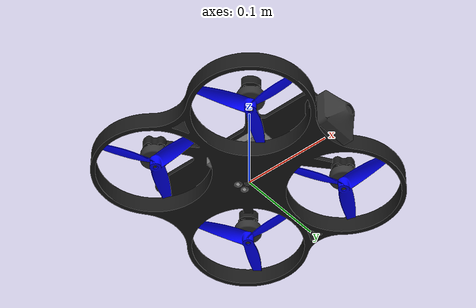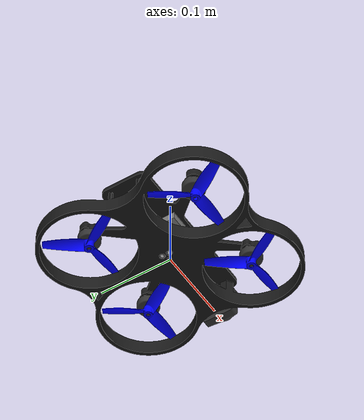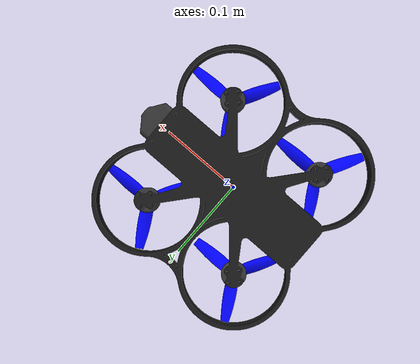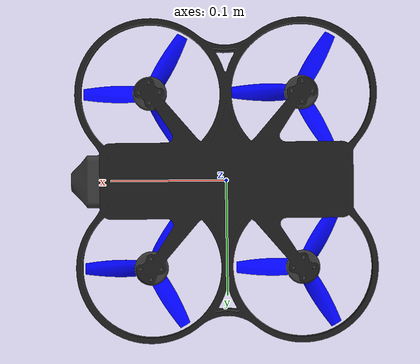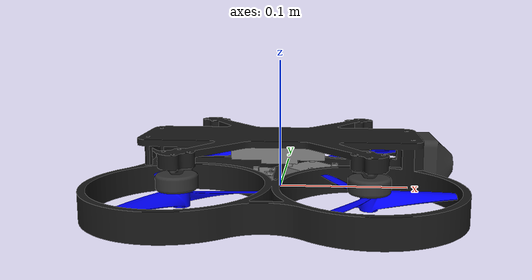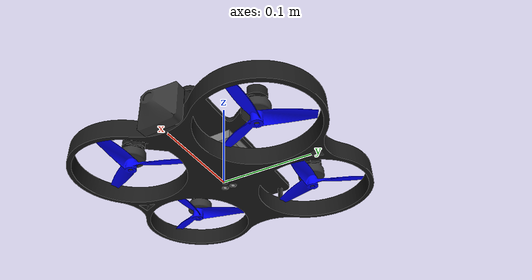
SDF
<?xml version='1.0' encoding='utf-8'?>
<sdf version="1.7">
    <model name="CINEWHOOP_4.5">
        <link name="frame_4_5">
            <pose>0.0 0.0 0.0 0.0 -0.0 0.0</pose>
            <inertial>
                <mass>0.46559043380318527</mass>
                <pose>0.0030291193216684465 4.153273349654646e-06 0.018332329913369583 0.0 0.0 0.0</pose>
                <inertia>
                    <ixx>0.0021744778498765994</ixx>
                    <iyy>0.002488853720756953</iyy>
                    <izz>0.004457899881763257</izz>
                    <ixy>-1.832858723255757e-07</ixy>
                    <iyz>-1.822494627435283e-08</iyz>
                    <ixz>-1.4123664265542227e-05</ixz>
                </inertia>
            </inertial>
            <visual name="frame_4_5_visual">
                <geometry>
                    <mesh>
                        <uri>model://cinewhoop/meshes/frame_4.5.stl</uri>
                        <scale>0.001 0.001 0.001</scale>
                    </mesh>
                </geometry>
                <material>
                    <ambient>0.1 0.1 0.1 1.0</ambient>
                    <diffuse>0.1 0.1 0.1 1.0</diffuse>
                    <specular>0.01 0.01 0.01 1.0</specular>
                    <emissive>0 0 0 0</emissive>
                </material>
            </visual>
            <collision name="frame_4_5_collision">
                <geometry>
                    <mesh>
                        <uri>model://cinewhoop/meshes/frame_4.5.stl</uri>
                        <scale>0.001 0.001 0.001</scale>
                    </mesh>
                </geometry>
            </collision>
        </link>
        <link name="siyi_ip_camera">
            <pose>0.10816599938804068 -1.7275070263167436e-15 0.020500000000000008 9.244463733058728e-32 -4.417951470996925e-18 1.5707963267948968</pose>
            <inertial>
                <mass>0.034531703811389286</mass>
                <pose>-1.271742261216883e-15 -0.009130708665020693 -1.462820061108202e-18 0.0 0.0 0.0</pose>
                <inertia>
                    <ixx>5.620390098305882e-06</ixx>
                    <iyy>9.24352863067799e-06</iyy>
                    <izz>6.027604506851181e-06</izz>
                    <ixy>-6.838812146243414e-19</ixy>
                    <iyz>1.4808982354579313e-21</iyz>
                    <ixz>-1.027054303156257e-11</ixz>
                </inertia>
            </inertial>
            <visual name="siyi_ip_camera_visual">
                <geometry>
                    <mesh>
                        <uri>model://cinewhoop/meshes/siyi_ip_camera.stl</uri>
                        <scale>0.001 0.001 0.001</scale>
                    </mesh>
                </geometry>
                <material>
                    <ambient>0.2 0.2 0.2 1.0</ambient>
                    <diffuse>0.2 0.2 0.2 1.0</diffuse>
                    <specular>0.02 0.02 0.02 1.0</specular>
                    <emissive>0 0 0 0</emissive>
                </material>
            </visual>
            <collision name="siyi_ip_camera_collision">
                <geometry>
                    <mesh>
                        <uri>model://cinewhoop/meshes/siyi_ip_camera.stl</uri>
                        <scale>0.001 0.001 0.001</scale>
                    </mesh>
                </geometry>
            </collision>
            <sensor name="siyi_rgbd_cam" type="rgbd_camera">
                <pose degrees="true">0 0 0 0 0 -90</pose>
                <update_rate>30</update_rate>
                <!-- Stream RGB -->
                <camera name="rgb">
                    <horizontal_fov>1.047</horizontal_fov>
                    <image>
                    <width>640</width>
                    <height>480</height>
                    <format>R8G8B8</format>
                    </image>
                    <clip>
                    <near>0.1</near>
                    <far>10.0</far>
                    </clip>
                </camera>
                <!-- Stream Profundidad -->
                <depth_camera name="depth">
                    <horizontal_fov>1.047</horizontal_fov>
                    <range>
                    <min>0.1</min>
                    <max>10.0</max>
                    <resolution>0.01</resolution>
                    </range>
                </depth_camera>
                <always_on>1</always_on>
                <visualize>true</visualize>
                <topic>drone_camera</topic>
            </sensor>

        </link>
        <link name="motor_fr">
            <pose>0.274930173354724 -0.03694440364659316 0.029499999999999967 3.141592653589793 2.6367796834847463e-16 0.0</pose>
            <inertial>
                <mass>0.02166445211752593</mass>
                <pose>-0.20985117029189773 0.038055588330862845 0.007696163669726234 0.0 0.0 0.0</pose>
                <inertia>
                    <ixx>1.421637783939523e-06</ixx>
                    <iyy>1.4216377839314737e-06</iyy>
                    <izz>2.0339490705062644e-06</izz>
                    <ixy>1.2737599899829212e-18</ixy>
                    <iyz>-2.303980641541076e-19</iyz>
                    <ixz>-1.27367722463913e-18</ixz>
                </inertia>
            </inertial>
            <visual name="motor_fr_visual">
                <geometry>
                    <mesh>
                        <uri>model://cinewhoop/meshes/motor_fr.stl</uri>
                        <scale>0.001 0.001 0.001</scale>
                    </mesh>
                </geometry>
                <material>
                    <ambient>0.2 0.2 0.2 1.0</ambient>
                    <diffuse>0.2 0.2 0.2 1.0</diffuse>
                    <specular>0.02 0.02 0.02 1.0</specular>
                    <emissive>0 0 0 0</emissive>
                </material>
            </visual>
            <collision name="motor_fr_collision">
                <geometry>
                    <mesh>
                        <uri>model://cinewhoop/meshes/motor_fr.stl</uri>
                        <scale>0.001 0.001 0.001</scale>
                    </mesh>
                </geometry>
            </collision>
        </link>
        <link name="motor_fl">
            <pose>0.27493017335473496 0.11305558079046382 0.029500000000000047 -3.141592653589793 -1.3877787807814454e-16 0.0</pose>
            <inertial>
                <mass>0.02166445211752592</mass>
                <pose>-0.20985117007347823 0.03805558834997017 0.007696163669726252 0.0 0.0 0.0</pose>
                <inertia>
                    <ixx>1.4216377839396332e-06</ixx>
                    <iyy>1.4216377839309595e-06</iyy>
                    <izz>2.0339490705053437e-06</izz>
                    <ixy>1.5044488894486688e-18</ixy>
                    <iyz>-2.3039127803815886e-19</iyz>
                    <ixz>-1.3350179333965965e-18</ixz>
                </inertia>
            </inertial>
            <visual name="motor_fl_visual">
                <geometry>
                    <mesh>
                        <uri>model://cinewhoop/meshes/motor_fl.stl</uri>
                        <scale>0.001 0.001 0.001</scale>
                    </mesh>
                </geometry>
                <material>
                    <ambient>0.2 0.2 0.2 1.0</ambient>
                    <diffuse>0.2 0.2 0.2 1.0</diffuse>
                    <specular>0.02 0.02 0.02 1.0</specular>
                    <emissive>0 0 0 0</emissive>
                </material>
            </visual>
            <collision name="motor_fl_collision">
                <geometry>
                    <mesh>
                        <uri>model://cinewhoop/meshes/motor_fl.stl</uri>
                        <scale>0.001 0.001 0.001</scale>
                    </mesh>
                </geometry>
            </collision>
        </link>
        <link name="motor_rr">
            <pose>0.14477216604671359 -0.03694440364658221 0.029499999999999995 3.141592653589793 9.714451465470125e-17 -2.4651903288156635e-32</pose>
            <inertial>
                <mass>0.02166445211752593</mass>
                <pose>-0.20985117033059833 0.038055588773191124 0.007696163669726242 0.0 0.0 0.0</pose>
                <inertia>
                    <ixx>1.4216377839395497e-06</ixx>
                    <iyy>1.4216377839304289e-06</iyy>
                    <izz>2.033949070506183e-06</izz>
                    <ixy>1.1787541955779033e-18</ixy>
                    <iyz>-2.439699854182217e-19</iyz>
                    <ixz>-1.300925598784377e-18</ixz>
                </inertia>
            </inertial>
            <visual name="motor_rr_visual">
                <geometry>
                    <mesh>
                        <uri>model://cinewhoop/meshes/motor_rr.stl</uri>
                        <scale>0.001 0.001 0.001</scale>
                    </mesh>
                </geometry>
                <material>
                    <ambient>0.2 0.2 0.2 1.0</ambient>
                    <diffuse>0.2 0.2 0.2 1.0</diffuse>
                    <specular>0.02 0.02 0.02 1.0</specular>
                    <emissive>0 0 0 0</emissive>
                </material>
            </visual>
            <collision name="motor_rr_collision">
                <geometry>
                    <mesh>
                        <uri>model://cinewhoop/meshes/motor_rr.stl</uri>
                        <scale>0.001 0.001 0.001</scale>
                    </mesh>
                </geometry>
            </collision>
        </link>
        <link name="motor_rl">
            <pose>0.14477216604672452 0.11305558079047473 0.02950000000000002 3.141592653589793 -0.0 0.0</pose>
            <inertial>
                <mass>0.02166445211752593</mass>
                <pose>-0.20985117011217871 0.03805558879229849 0.0076961636697262525 0.0 0.0 0.0</pose>
                <inertia>
                    <ixx>1.4216377839396056e-06</ixx>
                    <iyy>1.42163778393142e-06</iyy>
                    <izz>2.033949070506401e-06</izz>
                    <ixy>1.3823577699190182e-18</ixy>
                    <iyz>-2.371692252312041e-19</iyz>
                    <ixz>-1.3417001884508117e-18</ixz>
                </inertia>
            </inertial>
            <visual name="motor_rl_visual">
                <geometry>
                    <mesh>
                        <uri>model://cinewhoop/meshes/motor_rl.stl</uri>
                        <scale>0.001 0.001 0.001</scale>
                    </mesh>
                </geometry>
                <material>
                    <ambient>0.2 0.2 0.2 1.0</ambient>
                    <diffuse>0.2 0.2 0.2 1.0</diffuse>
                    <specular>0.02 0.02 0.02 1.0</specular>
                    <emissive>0 0 0 0</emissive>
                </material>
            </visual>
            <collision name="motor_rl_collision">
                <geometry>
                    <mesh>
                        <uri>model://cinewhoop/meshes/motor_rl.stl</uri>
                        <scale>0.001 0.001 0.001</scale>
                    </mesh>
                </geometry>
            </collision>
        </link>
        <link name="prop_ccw_1">
            <pose>0.06507900306282184 -0.07499999197745517 -0.007500000000000071 -4.8570128095075863e-17 -7.21644966006352e-16 -9.720794061142923e-48</pose>
            <inertial>
                <mass>0.003055288032744085</mass>
                <pose>1.0107556796525069e-07 -9.520076465027065e-08 0.019866036312918018 0.0 0.0 0.0</pose>
                <inertia>
                    <ixx>9.386423608052252e-07</ixx>
                    <iyy>9.386625365933881e-07</iyy>
                    <izz>1.8144437132977541e-06</izz>
                    <ixy>-2.468761636897001e-12</ixy>
                    <iyz>7.361053688216663e-13</iyz>
                    <ixz>-1.0264157098639926e-12</ixz>
                </inertia>
            </inertial>
            <visual name="prop_ccw_1_visual">
                <geometry>
                    <mesh>
                        <uri>model://cinewhoop/meshes/prop_ccw_1.stl</uri>
                        <scale>0.001 0.001 0.001</scale>
                    </mesh>
                </geometry>
                <material>
                    <ambient>0 0 1</ambient>
                    <diffuse>0 0 1</diffuse>
                    <specular>0.1 0.1 0.1 1</specular>
                </material>
            </visual>
            <collision name="prop_ccw_1_collision">
                <pose>0 0 0 0 0 0</pose>
                <geometry>
                    <cylinder>
                        <length>0.005</length>
                        <radius>0.1</radius>
                    </cylinder>
                </geometry>
                <surface>
                    <contact>
                        <ode/>
                    </contact>
                    <friction>
                        <ode/>
                    </friction>
                </surface>
            </collision>
        </link>
        <link name="prop_ccw_2">
            <pose>-0.06507900406545856 0.07499999199817704 -0.007499999999999947 -1.2352531617612977e-16 -7.415942859800849e-16 0.0</pose>
            <inertial>
                <mass>0.003055288032744085</mass>
                <pose>1.010755679745287e-07 -9.520076465175954e-08 0.019866036312917976 0.0 0.0 0.0</pose>
                <inertia>
                    <ixx>9.386423608052273e-07</ixx>
                    <iyy>9.386625365933761e-07</iyy>
                    <izz>1.8144437132977473e-06</izz>
                    <ixy>-2.468761635140239e-12</ixy>
                    <iyz>7.361053691091785e-13</iyz>
                    <ixz>-1.0264157081049597e-12</ixz>
                </inertia>
            </inertial>
            <visual name="prop_ccw_2_visual">
                <geometry>
                    <mesh>
                        <uri>model://cinewhoop/meshes/prop_ccw_2.stl</uri>
                        <scale>0.001 0.001 0.001</scale>
                    </mesh>
                </geometry>
                <material>
                    <ambient>0 0 1</ambient>
                    <diffuse>0 0 1</diffuse>
                    <specular>0.1 0.1 0.1 1</specular>
                </material>
            </visual>
            <collision name="prop_ccw_2_collision">
                <pose>0 0 0 0 0 0</pose>
                <geometry>
                    <cylinder>
                        <length>0.005</length>
                        <radius>0.1</radius>
                    </cylinder>
                </geometry>
                <surface>
                    <contact>
                        <ode/>
                    </contact>
                    <friction>
                        <ode/>
                    </friction>
                </surface>
            </collision>
        </link>
        <link name="prop_cw_1">
            <pose>0.06507900328125238 0.07499999244049448 -0.007499999999999876 -9.799311739310995e-16 1.7347234759768157e-17 2.7061742689683618e-49</pose>
            <inertial>
                <mass>0.0030552880224177003</mass>
                <pose>1.0107556833248662e-07 9.520076491405558e-08 0.019866036320335193 0.0 0.0 0.0</pose>
                <inertia>
                    <ixx>9.386423600392953e-07</ixx>
                    <iyy>9.386625350965473e-07</iyy>
                    <izz>1.8144437124096816e-06</izz>
                    <ixy>2.4687616373529236e-12</ixy>
                    <iyz>-7.361053705718206e-13</iyz>
                    <ixz>-1.026415705253706e-12</ixz>
                </inertia>
            </inertial>
            <visual name="prop_cw_1_visual">
                <geometry>
                    <mesh>
                        <uri>model://cinewhoop/meshes/prop_cw_1.stl</uri>
                        <scale>0.001 0.001 0.001</scale>
                    </mesh>
                </geometry>
                <material>
                    <ambient>0 0 1</ambient>
                    <diffuse>0 0 1</diffuse>
                    <specular>0.1 0.1 0.1 1</specular>
                </material>
            </visual>
            <collision name="prop_cw_1_collision">
                <pose>0 0 0 0 0 0</pose>
                <geometry>
                    <cylinder>
                        <length>0.005</length>
                        <radius>0.1</radius>
                    </cylinder>
                </geometry>
                <surface>
                    <contact>
                        <ode/>
                    </contact>
                    <friction>
                        <ode/>
                    </friction>
                </surface>
            </collision>
        </link>
        <link name="prop_cw_2">
            <pose>-0.062124581024852576 -0.0755209369527733 -0.0075 -1.2246467991473532e-16 1.4248351561832541e-80 -2.4651903288156646e-32</pose>
            <inertial>
                <mass>0.0030552880224177003</mass>
                <pose>1.0107556833283127e-07 9.520076493109003e-08 0.019866036320335283 0.0 0.0 0.0</pose>
                <inertia>
                    <ixx>9.386423600392957e-07</ixx>
                    <iyy>9.386625350965416e-07</iyy>
                    <izz>1.8144437124096998e-06</izz>
                    <ixy>2.4687616334502548e-12</ixy>
                    <iyz>-7.361053668994625e-13</iyz>
                    <ixz>-1.0264157056812224e-12</ixz>
                </inertia>
            </inertial>
            <visual name="prop_cw_2_visual">
                <geometry>
                    <mesh>
                        <uri>model://cinewhoop/meshes/prop_cw_2.stl</uri>
                        <scale>0.001 0.001 0.001</scale>
                    </mesh>
                </geometry>
                <material>
                    <ambient>0 0 1</ambient>
                    <diffuse>0 0 1</diffuse>
                    <specular>0.1 0.1 0.1 1</specular>
                </material>
            </visual>
            <collision name="prop_cw_2_collision">
                <pose>0 0 0 0 0 0</pose>
                <geometry>
                    <cylinder>
                        <length>0.005</length>
                        <radius>0.1</radius>
                    </cylinder>
                </geometry>
                <surface>
                    <contact>
                        <ode/>
                    </contact>
                    <friction>
                        <ode/>
                    </friction>
                </surface>
            </collision>
        </link>
        <link name="siyi_air_unit">
            <pose>-0.03500336143572493 0.027499999999998335 0.03700000000000003 3.141592653589793 -4.85722573273506e-17 -3.081487911019581e-33</pose>
            <inertial>
                <mass>0.04557472080298034</mass>
                <pose>0.03499999999999993 0.027499999999999962 0.005836379592726967 0.0 0.0 0.0</pose>
                <inertia>
                    <ixx>1.1193094656117847e-05</ixx>
                    <iyy>1.7609661308200536e-05</iyy>
                    <izz>2.7547878553966728e-05</izz>
                    <ixy>-3.573378833154884e-20</ixy>
                    <iyz>-2.4100810870347752e-20</iyz>
                    <ixz>-4.782017193695928e-21</ixz>
                </inertia>
            </inertial>
            <visual name="siyi_air_unit_visual">
                <geometry>
                    <mesh>
                        <uri>model://cinewhoop/meshes/siyi_air_unit.stl</uri>
                        <scale>0.001 0.001 0.001</scale>
                    </mesh>
                </geometry>
                <material>
                    <ambient>0.5 0.5 0.5 1.0</ambient>
                    <diffuse>0.5 0.5 0.5 1.0</diffuse>
                    <specular>0.05 0.05 0.05 1.0</specular>
                    <emissive>0 0 0 0</emissive>
                </material>
            </visual>
            <collision name="siyi_air_unit_collision">
                <geometry>
                    <mesh>
                        <uri>model://cinewhoop/meshes/siyi_air_unit.stl</uri>
                        <scale>0.001 0.001 0.001</scale>
                    </mesh>
                </geometry>
            </collision>
        </link>
        <link name="mtf_01">
            <pose>0.001402111925407643 -0.007526695777428938 0.011279042763823459 3.1415924787442404 8.742277595534357e-08 -3.141592653589793</pose>
            <inertial>
                <mass>0.013295325356687966</mass>
                <pose>0.014009787400437767 0.0075178157913489045 0.0035476952044421854 0.0 0.0 0.0</pose>
                <inertia>
                    <ixx>6.753309908838135e-07</ixx>
                    <iyy>3.9790948813233957e-07</iyy>
                    <izz>7.718463097971414e-07</izz>
                    <ixy>-8.83766017028076e-09</ixy>
                    <iyz>1.7675759429293753e-08</iyz>
                    <ixz>4.769354837227354e-08</ixz>
                </inertia>
            </inertial>
            <visual name="mtf_01_visual">
                <geometry>
                    <mesh>
                        <uri>model://cinewhoop/meshes/mtf_01.stl</uri>
                        <scale>0.001 0.001 0.001</scale>
                    </mesh>
                </geometry>
                <material>
                    <ambient>0.5 0.5 0.5 1.0</ambient>
                    <diffuse>0.5 0.5 0.5 1.0</diffuse>
                    <specular>0.05 0.05 0.05 1.0</specular>
                    <emissive>0 0 0 0</emissive>
                </material>
            </visual>
            <collision name="mtf_01_collision">
                <geometry>
                    <mesh>
                        <uri>model://cinewhoop/meshes/mtf_01.stl</uri>
                        <scale>0.001 0.001 0.001</scale>
                    </mesh>
                </geometry>
            </collision>
            <sensor name='lidar_altura' type='gpu_lidar'>
                <pose>0 0 0.01 0 -1.57079632679 0</pose>
                <topic>lidar</topic>
                <update_rate>10</update_rate>
                <ray>
                    <scan>
                        <horizontal>
                            <samples>1</samples>
                            <min_angle>0</min_angle>
                            <max_angle>0</max_angle>
                        </horizontal>
                        <vertical>
                            <samples>1</samples>
                            <min_angle>0</min_angle>
                            <max_angle>0</max_angle>
                        </vertical>
                    </scan>
                    <range>
                        <min>0.02</min>
                        <max>8.0</max>
                        <resolution>0.01</resolution>
                    </range>
                </ray>
                <always_on>1</always_on>
                <visualize>true</visualize>
            </sensor>
            <sensor name='optical_flow' type='camera'>
                <pose>0 0 0.01 0 -1.57079632679 0</pose>
                <update_rate>10</update_rate>
                <topic>optical_flow_cam</topic>
                <image>
                    <width>320</width>
                    <height>240</height>
                    <format>R8G8B8</format>
                </image>
                <clip>
                    <near>0.02</near>
                    <far>10</far>
                </clip>
                <visualize>true</visualize>
                <always_on>1</always_on>
            </sensor>

        </link>
        <link name="speedybee_f405_aio">
            <pose>0.027533154453973765 0.0004322813446612961 0.008000000000000005 -4.08636269416162e-16 8.649843312289846e-32 2.465190328815663e-32</pose>
            <inertial>
                <mass>0.009431279583242714</mass>
                <pose>-0.0025331545871163943 -0.00043228195663682354 0.003999999999999995 0.0 0.0 0.0</pose>
                <inertia>
                    <ixx>9.213199669108751e-07</ixx>
                    <iyy>9.213199669108787e-07</iyy>
                    <izz>1.720500607706739e-06</izz>
                    <ixy>9.879954062212517e-10</ixy>
                    <iyz>-7.484305977735065e-22</iyz>
                    <ixz>4.1866377504880735e-22</ixz>
                </inertia>
            </inertial>
            <visual name="speedybee_f405_aio_visual">
                <geometry>
                    <mesh>
                        <uri>model://cinewhoop/meshes/speedybee_f405_aio.stl</uri>
                        <scale>0.001 0.001 0.001</scale>
                    </mesh>
                </geometry>
                <material>
                    <ambient>0.5 0.5 0.5 1.0</ambient>
                    <diffuse>0.5 0.5 0.5 1.0</diffuse>
                    <specular>0.05 0.05 0.05 1.0</specular>
                    <emissive>0 0 0 0</emissive>
                </material>
            </visual>
            <collision name="speedybee_f405_aio_collision">
                <geometry>
                    <mesh>
                        <uri>model://cinewhoop/meshes/speedybee_f405_aio.stl</uri>
                        <scale>0.001 0.001 0.001</scale>
                    </mesh>
                </geometry>
            </collision>
        </link>
        <link name='imu_link'>
            <inertial>
                <pose>0 0 0 0 0 0</pose>
                <mass>0.15</mass>
                <inertia>
                <ixx>0.00001</ixx>
                <ixy>0</ixy>
                <ixz>0</ixz>
                <iyy>0.00002</iyy>
                <iyz>0</iyz>
                <izz>0.00002</izz>
                </inertia>
            </inertial>
            <sensor name='imu_sensor' type='imu'>
                <pose>0 0 0 3.141593 0 0</pose>
                <always_on>1</always_on>
                <update_rate>1000</update_rate>
            </sensor>
            <sensor name="mag_sensor" type="magnetometer">
                <always_on>1</always_on>
                <update_rate>50</update_rate>
                <visualize>1</visualize>
            </sensor>
        </link>
        <joint name='base_imu_joint' type='fixed'>
            <parent>frame_4_5</parent>
            <child>imu_link</child>
            <axis>
                <xyz>0 0 1</xyz>
                <limit>
                <lower>0</lower>
                <upper>0</upper>
                <effort>0</effort>
                <velocity>0</velocity>
                </limit>
                <dynamics>
                <damping>1</damping>
                </dynamics>
                <use_parent_model_frame>1</use_parent_model_frame>
            </axis>
            <physics>
                <ode>
                <implicit_spring_damper>1</implicit_spring_damper>
                </ode>
            </physics>
        </joint>
        <joint name="frame_4_5_Rigida-2" type="fixed">
            <pose>1.7276020122054278e-15 -6.119593165543335e-10 0.021499999999999995 0.0 0.0 0.0</pose>
            <parent>frame_4_5</parent>
            <child>siyi_ip_camera</child>
        </joint>
        <joint name="frame_4_5_Rigida-3" type="fixed">
            <pose>-0.2098511733547239 0.038055596353406856 -0.0024999999999999922 0.0 0.0 0.0</pose>
            <parent>frame_4_5</parent>
            <child>motor_fr</child>
        </joint>
        <joint name="frame_4_5_Rigida-4" type="fixed">
            <pose>-0.20985117335473502 0.03805558079046381 -0.0024999999999999814 0.0 0.0 0.0</pose>
            <parent>frame_4_5</parent>
            <child>motor_fl</child>
        </joint>
        <joint name="frame_4_5_Rigida-5" type="fixed">
            <pose>-0.20985116604672452 0.03805558079047473 -0.0024999999999999814 0.0 0.0 0.0</pose>
            <parent>frame_4_5</parent>
            <child>motor_rl</child>
        </joint>
        <joint name="frame_4_5_Rigida-6" type="fixed">
            <pose>-0.20985116604671347 0.038055596353417806 -0.0024999999999999935 0.0 0.0 0.0</pose>
            <parent>frame_4_5</parent>
            <child>motor_rr</child>
        </joint>
        <joint name="motor_fr_Revolucion-7" type="revolute">
            <pose>-3.062821826410597e-09 -8.022544824046824e-09 0.023500000000000056 0.0 0.0 0.0</pose>
            <parent>motor_fr</parent>
            <child>prop_ccw_1</child>
            <axis>
                <xyz>0 0 1</xyz>
                <limit>
                <lower>-1e+16</lower>
                <upper>1e+16</upper>
                </limit>
                <dynamics>
                <damping>0.004</damping>
                </dynamics>
                <use_parent_model_frame>1</use_parent_model_frame>
            </axis>
            <physics>
                <ode>
                <implicit_spring_damper>1</implicit_spring_damper>
                </ode>
            </physics>
        </joint>
        <joint name="motor_rl_Revolucion-8" type="revolute">
            <pose>4.065458584442693e-09 8.001822951337147e-09 0.02349999999999991 0.0 0.0 0.0</pose>
            <parent>motor_rl</parent>
            <child>prop_ccw_2</child>
            <axis>
                <xyz>0 0 1</xyz>
                <limit>
                <lower>-1e+16</lower>
                <upper>1e+16</upper>
                </limit>
                <dynamics>
                <damping>0.004</damping>
                </dynamics>
                <use_parent_model_frame>1</use_parent_model_frame>
            </axis>
            <physics>
                <ode>
                <implicit_spring_damper>1</implicit_spring_damper>
                </ode>
            </physics>
        </joint>
        <joint name="motor_fl_Revolucion-9" type="revolute">
            <pose>-3.281252381323248e-09 7.559505498530984e-09 0.023499999999999823 0.0 0.0 0.0</pose>
            <parent>motor_fl</parent>
            <child>prop_cw_1</child>
            <axis>
                <xyz>0 0 1</xyz>
                <limit>
                <lower>-1e+16</lower>
                <upper>1e+16</upper>
                </limit>
                <dynamics>
                <damping>0.004</damping>
                </dynamics>
                <use_parent_model_frame>1</use_parent_model_frame>
            </axis>
            <physics>
                <ode>
                <implicit_spring_damper>1</implicit_spring_damper>
                </ode>
            </physics>
        </joint>
        <joint name="motor_rr_Revolucion-10" type="revolute">
            <pose>-4.189751474231729e-07 -6.304722670612794e-08 0.0235 0.0 0.0 0.0</pose>
            <parent>motor_rr</parent>
            <child>prop_cw_2</child>
            <axis>
                <xyz>0 0 1</xyz>
                <limit>
                <lower>-1e+16</lower>
                <upper>1e+16</upper>
                </limit>
                <dynamics>
                <damping>0.004</damping>
                </dynamics>
                <use_parent_model_frame>1</use_parent_model_frame>
            </axis>
            <physics>
                <ode>
                <implicit_spring_damper>1</implicit_spring_damper>
                </ode>
            </physics>
        </joint>
        <joint name="frame_4_5_Rigida-11" type="fixed">
            <pose>0.035000361435724894 0.027499999999998314 3.5432969954616553e-17 0.0 0.0 0.0</pose>
            <parent>frame_4_5</parent>
            <child>siyi_air_unit</child>
        </joint>
        <joint name="frame_4_5_Rigida-12" type="fixed">
            <pose>0.012170112911452808 0.0024336938053386085 0.011279042125399145 0.0 0.0 0.0</pose>
            <parent>frame_4_5</parent>
            <child>mtf_01</child>
        </joint>
        <joint name="frame_4_5_Rigida-13" type="fixed">
            <pose>-0.027533154453973755 -0.00043228134466129486 -0.003000000000000004 0.0 0.0 0.0</pose>
            <parent>frame_4_5</parent>
            <child>speedybee_f405_aio</child>
        </joint>

        <!-- PLUGINS -->

        <plugin filename="libignition-gazebo-joint-state-publisher-system.so"
        name="ignition::gazebo::systems::JointStatePublisher">
        </plugin>

        <plugin filename="libignition-gazebo-lift-drag-system.so"
            name="ignition::gazebo::systems::LiftDrag">
            <a0>0.3</a0>
            <alpha_stall>1.4</alpha_stall>
            <cla>2.11</cla>
            <cda>0.10</cda>
            <cma>0.00</cma>
            <cla_stall>-0.025</cla_stall>
            <cda_stall>0.0</cda_stall>
            <cma_stall>0.0</cma_stall>
            <cp>0.08 0 0.003</cp>
            <area>0.005</area>     <!-- algo mayor si hace falta -->
            <air_density>1.225</air_density>
            <forward>0 1 0</forward>
            <upward>0 0 1</upward>  <!-- o 0 0 -1 si mediste empuje negativo -->
            <link_name>prop_ccw_1</link_name>
        </plugin>
        <plugin filename="libignition-gazebo-lift-drag-system.so"
            name="ignition::gazebo::systems::LiftDrag">
            <a0>0.3</a0>
            <alpha_stall>1.4</alpha_stall>
            <cla>2.11</cla>
            <cda>0.10</cda>
            <cma>0.00</cma>
            <cla_stall>-0.025</cla_stall>
            <cda_stall>0.0</cda_stall>
            <cma_stall>0.0</cma_stall>
            <cp>-0.04 0.069282 0.003</cp>
            <area>0.005</area>     <!-- algo mayor si hace falta -->
            <air_density>1.225</air_density>
            <forward>0.866025 -0.5 0</forward>
            <upward>0 0 1</upward>  <!-- o 0 0 -1 si mediste empuje negativo -->
            <link_name>prop_ccw_1</link_name>
        </plugin>
        <plugin filename="libignition-gazebo-lift-drag-system.so"
            name="ignition::gazebo::systems::LiftDrag">
            <a0>0.3</a0>
            <alpha_stall>1.4</alpha_stall>
            <cla>2.11</cla>
            <cda>0.10</cda>
            <cma>0.00</cma>
            <cla_stall>-0.025</cla_stall>
            <cda_stall>0.0</cda_stall>
            <cma_stall>0.0</cma_stall>
            <cp>-0.04 -0.069282 0.003</cp>
            <area>0.005</area>     <!-- algo mayor si hace falta -->
            <air_density>1.225</air_density>
            <forward>0.866025 0.5 0</forward>
            <upward>0 0 1</upward>  <!-- o 0 0 -1 si mediste empuje negativo -->
            <link_name>prop_ccw_1</link_name>
        </plugin>

        <plugin filename="libignition-gazebo-lift-drag-system.so"
            name="ignition::gazebo::systems::LiftDrag">
            <a0>0.3</a0>
            <alpha_stall>1.4</alpha_stall>
            <cla>2.11</cla>
            <cda>0.10</cda>
            <cma>0.00</cma>
            <cla_stall>-0.025</cla_stall>
            <cda_stall>0.0</cda_stall>
            <cma_stall>0.0</cma_stall>
            <cp>0.08 0 0.003</cp>
            <area>0.005</area>     <!-- algo mayor si hace falta -->
            <air_density>1.225</air_density>
            <forward>0 1 0</forward>
            <upward>0 0 1</upward>  <!-- o 0 0 -1 si mediste empuje negativo -->
            <link_name>prop_ccw_2</link_name>
        </plugin>
        <plugin filename="libignition-gazebo-lift-drag-system.so"
            name="ignition::gazebo::systems::LiftDrag">
            <a0>0.3</a0>
            <alpha_stall>1.4</alpha_stall>
            <cla>2.11</cla>
            <cda>0.10</cda>
            <cma>0.00</cma>
            <cla_stall>-0.025</cla_stall>
            <cda_stall>0.0</cda_stall>
            <cma_stall>0.0</cma_stall>
            <cp>-0.04 0.069282 0.003</cp>
            <area>0.005</area>     <!-- algo mayor si hace falta -->
            <air_density>1.225</air_density>
            <forward>0.866025 -0.5 0</forward>
            <upward>0 0 1</upward>  <!-- o 0 0 -1 si mediste empuje negativo -->
            <link_name>prop_ccw_2</link_name>
        </plugin>
        <plugin filename="libignition-gazebo-lift-drag-system.so"
            name="ignition::gazebo::systems::LiftDrag">
            <a0>0.3</a0>
            <alpha_stall>1.4</alpha_stall>
            <cla>2.11</cla>
            <cda>0.10</cda>
            <cma>0.00</cma>
            <cla_stall>-0.025</cla_stall>
            <cda_stall>0.0</cda_stall>
            <cma_stall>0.0</cma_stall>
            <cp>-0.04 -0.069282 0.003</cp>
            <area>0.005</area>     <!-- algo mayor si hace falta -->
            <air_density>1.225</air_density>
            <forward>0.866025 0.5 0</forward>
            <upward>0 0 1</upward>  <!-- o 0 0 -1 si mediste empuje negativo -->
            <link_name>prop_ccw_2</link_name>
        </plugin>

        <plugin filename="libignition-gazebo-lift-drag-system.so"
            name="ignition::gazebo::systems::LiftDrag">
            <a0>0.3</a0>
            <alpha_stall>1.4</alpha_stall>
            <cla>2.11</cla>
            <cda>0.10</cda>
            <cma>0.00</cma>
            <cla_stall>-0.025</cla_stall>
            <cda_stall>0.0</cda_stall>
            <cma_stall>0.0</cma_stall>
            <cp>0.08 0 0.003</cp>
            <area>0.005</area>     <!-- algo mayor si hace falta -->
            <air_density>1.225</air_density>
            <forward>0 -1 0</forward>
            <upward>0 0 1</upward>  <!-- o 0 0 -1 si mediste empuje negativo -->
            <link_name>prop_cw_1</link_name>
        </plugin>
        <plugin filename="libignition-gazebo-lift-drag-system.so"
            name="ignition::gazebo::systems::LiftDrag">
            <a0>0.3</a0>
            <alpha_stall>1.4</alpha_stall>
            <cla>2.11</cla>
            <cda>0.10</cda>
            <cma>0.00</cma>
            <cla_stall>-0.025</cla_stall>
            <cda_stall>0.0</cda_stall>
            <cma_stall>0.0</cma_stall>
            <cp>-0.04 0.069282 0.003</cp>
            <area>0.005</area>     <!-- algo mayor si hace falta -->
            <air_density>1.225</air_density>
            <forward>0.866025 -0.5 0</forward>
            <upward>0 0 1</upward>  <!-- o 0 0 -1 si mediste empuje negativo -->
            <link_name>prop_cw_1</link_name>
        </plugin>
        <plugin filename="libignition-gazebo-lift-drag-system.so"
            name="ignition::gazebo::systems::LiftDrag">
            <a0>0.3</a0>
            <alpha_stall>1.4</alpha_stall>
            <cla>2.11</cla>
            <cda>0.10</cda>
            <cma>0.00</cma>
            <cla_stall>-0.025</cla_stall>
            <cda_stall>0.0</cda_stall>
            <cma_stall>0.0</cma_stall>
            <cp>-0.04 -0.069282 0.003</cp>
            <area>0.005</area>     <!-- algo mayor si hace falta -->
            <air_density>1.225</air_density>
            <forward>0.866025 0.5 0</forward>
            <upward>0 0 1</upward>  <!-- o 0 0 -1 si mediste empuje negativo -->
            <link_name>prop_cw_1</link_name>
        </plugin>

        <plugin filename="libignition-gazebo-lift-drag-system.so"
            name="ignition::gazebo::systems::LiftDrag">
            <a0>0.3</a0>
            <alpha_stall>1.4</alpha_stall>
            <cla>2.11</cla>
            <cda>0.10</cda>
            <cma>0.00</cma>
            <cla_stall>-0.025</cla_stall>
            <cda_stall>0.0</cda_stall>
            <cma_stall>0.0</cma_stall>
            <cp>0.08 0 0.003</cp>
            <area>0.005</area>     <!-- algo mayor si hace falta -->
            <air_density>1.225</air_density>
            <forward>0 -1 0</forward>
            <upward>0 0 1</upward>  <!-- o 0 0 -1 si mediste empuje negativo -->
            <link_name>prop_cw_2</link_name>
        </plugin>
        <plugin filename="libignition-gazebo-lift-drag-system.so"
            name="ignition::gazebo::systems::LiftDrag">
            <a0>0.3</a0>
            <alpha_stall>1.4</alpha_stall>
            <cla>2.11</cla>
            <cda>0.10</cda>
            <cma>0.00</cma>
            <cla_stall>-0.025</cla_stall>
            <cda_stall>0.0</cda_stall>
            <cma_stall>0.0</cma_stall>
            <cp>-0.04 0.069282 0.003</cp>
            <area>0.005</area>     <!-- algo mayor si hace falta -->
            <air_density>1.225</air_density>
            <forward>0.866025 -0.5 0</forward>
            <upward>0 0 1</upward>  <!-- o 0 0 -1 si mediste empuje negativo -->
            <link_name>prop_cw_2</link_name>
        </plugin>
        <plugin filename="libignition-gazebo-lift-drag-system.so"
            name="ignition::gazebo::systems::LiftDrag">
            <a0>0.3</a0>
            <alpha_stall>1.4</alpha_stall>
            <cla>2.11</cla>
            <cda>0.10</cda>
            <cma>0.00</cma>
            <cla_stall>-0.025</cla_stall>
            <cda_stall>0.0</cda_stall>
            <cma_stall>0.0</cma_stall>
            <cp>-0.04 -0.069282 0.003</cp>
            <area>0.005</area>     <!-- algo mayor si hace falta -->
            <air_density>1.225</air_density>
            <forward>0.866025 0.5 0</forward>
            <upward>0 0 1</upward>  <!-- o 0 0 -1 si mediste empuje negativo -->
            <link_name>prop_cw_2</link_name>
        </plugin>

        <plugin name="ArduPilotPlugin" filename="libArduPilotPlugin.so">
            <fdm_addr>127.0.0.1</fdm_addr>
            <fdm_port_in>9002</fdm_port_in>
            <connectionTimeoutMaxCount>5</connectionTimeoutMaxCount>
            <lock_step>1</lock_step>

            <modelXYZToAirplaneXForwardZDown degrees="true">0 0 0 180 0 0</modelXYZToAirplaneXForwardZDown>
            <gazeboXYZToNED degrees="true">0 0 0 180 0 0</gazeboXYZToNED>

            <imuName>imu_sensor</imuName>
            <magSensorName>mag_sensor</magSensorName>
            <opticalFlowName>optical_flow</opticalFlowName>

            <control channel="0">
                <jointName>motor_fr_Revolucion-7</jointName>
                <useForce>1</useForce>
                <multiplier>838</multiplier>
                <offset>0</offset>
                <servo_min>1100</servo_min>
                <servo_max>1900</servo_max>
                <deadband>50</deadband>
                <type>VELOCITY</type>
                <p_gain>0.05</p_gain>
                <i_gain>0</i_gain>
                <d_gain>0</d_gain>
                <i_max>0</i_max>
                <i_min>0</i_min>
                <cmd_max>2.5</cmd_max>
                <cmd_min>-2.5</cmd_min>
                <controlVelocitySlowdownSim>1</controlVelocitySlowdownSim>
            </control>

            <control channel="1">
                <jointName>motor_rl_Revolucion-8</jointName>
                <useForce>1</useForce>
                <multiplier>838</multiplier>
                <offset>0</offset>
                <servo_min>1100</servo_min>
                <servo_max>1900</servo_max>
                <deadband>50</deadband>
                <type>VELOCITY</type>
                <p_gain>0.05</p_gain>
                <i_gain>0</i_gain>
                <d_gain>0</d_gain>
                <i_max>0</i_max>
                <i_min>0</i_min>
                <cmd_max>2.5</cmd_max>
                <cmd_min>-2.5</cmd_min>
                <controlVelocitySlowdownSim>1</controlVelocitySlowdownSim>
            </control>

            <control channel="2">
                <jointName>motor_fl_Revolucion-9</jointName>
                <useForce>1</useForce>
                <multiplier>-838</multiplier>
                <offset>0</offset>
                <servo_min>1100</servo_min>
                <servo_max>1900</servo_max>
                <deadband>50</deadband>
                <type>VELOCITY</type>
                <p_gain>0.05</p_gain>
                <i_gain>0</i_gain>
                <d_gain>0</d_gain>
                <i_max>0</i_max>
                <i_min>0</i_min>
                <cmd_max>2.5</cmd_max>
                <cmd_min>-2.5</cmd_min>
                <controlVelocitySlowdownSim>1</controlVelocitySlowdownSim>
            </control>

            <control channel="3">
                <jointName>motor_rr_Revolucion-10</jointName>
                <useForce>1</useForce>
                <multiplier>-838</multiplier>
                <offset>0</offset>
                <servo_min>1100</servo_min>
                <servo_max>1900</servo_max>
                <deadband>50</deadband>
                <type>VELOCITY</type>
                <p_gain>0.05</p_gain>
                <i_gain>0</i_gain>
                <d_gain>0</d_gain>
                <i_max>0</i_max>
                <i_min>0</i_min>
                <cmd_max>2.5</cmd_max>
                <cmd_min>-2.5</cmd_min>
                <controlVelocitySlowdownSim>1</controlVelocitySlowdownSim>
            </control>
        </plugin>
    </model>
</sdf>
